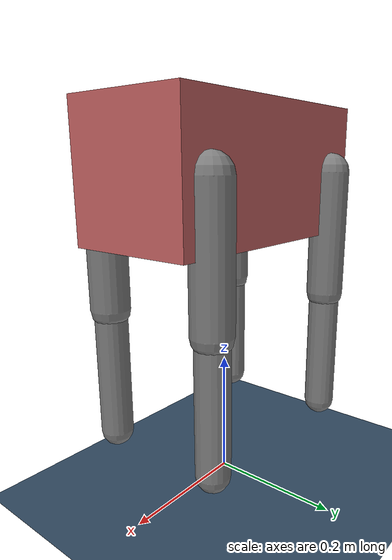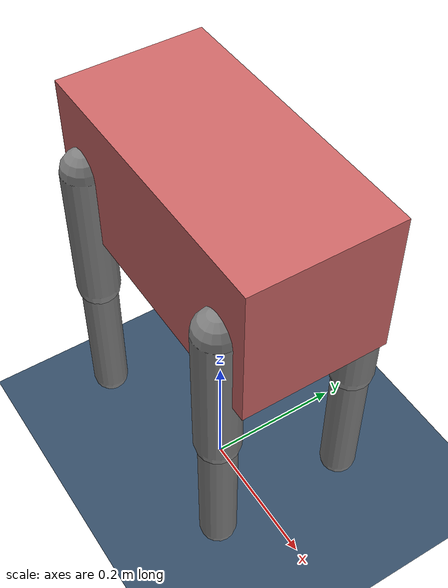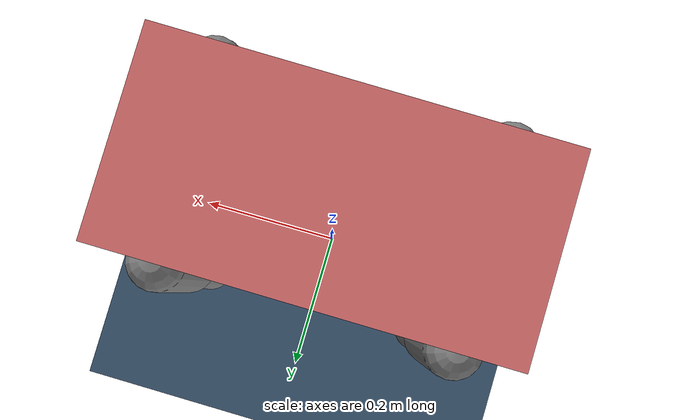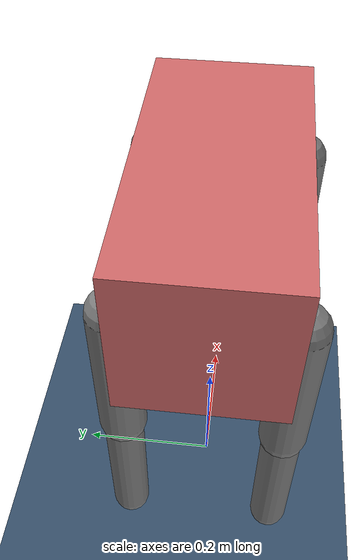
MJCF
<mujoco model="quadruped">
    <compiler angle="degree"/>

    <worldbody>
        <!-- Ground plane -->
        <geom name="ground" type="plane" size="5 5 0.1" rgba="0.2 0.3 0.4 1"/>

        <!-- Light source -->
        <light name="sun_light" pos="0 0 5" dir="0 0 -1" diffuse="1 1 1"/>

        <!-- Quadruped robot -->
        <body name="torso" pos="0 0 0.5">
            <!-- Free joint for the torso to allow movement -->
            <joint name="root" type="free"/>
            <!-- Torso geometry -->
            <geom name="torso_geom" type="box" size="0.2 0.1 0.1" rgba="0.8 0.4 0.4 1"/>

            <!-- Front Right Leg -->
            <body name="front_right_leg" pos="0.15 -0.1 0">
                <joint name="hip1" type="hinge" axis="0 1 0" range="-45 45"/>
                <geom name="thigh1_geom" type="capsule" fromto="0 0 0 0 0 -0.2" size="0.03"/>
                <body name="lower_front_right_leg" pos="0 0 -0.2">
                    <joint name="knee1" type="hinge" axis="0 1 0" range="0 90"/>
                    <geom name="shin1_geom" type="capsule" fromto="0 0 0 0 0 -0.2" size="0.025"/>
                </body>
            </body>

            <!-- Front Left Leg -->
            <body name="front_left_leg" pos="0.15 0.1 0">
                <joint name="hip2" type="hinge" axis="0 1 0" range="-45 45"/>
                <geom name="thigh2_geom" type="capsule" fromto="0 0 0 0 0 -0.2" size="0.03"/>
                <body name="lower_front_left_leg" pos="0 0 -0.2">
                    <joint name="knee2" type="hinge" axis="0 1 0" range="0 90"/>
                    <geom name="shin2_geom" type="capsule" fromto="0 0 0 0 0 -0.2" size="0.025"/>
                </body>
            </body>

            <!-- Rear Right Leg -->
            <body name="rear_right_leg" pos="-0.15 -0.1 0">
                <joint name="hip3" type="hinge" axis="0 1 0" range="-45 45"/>
                <geom name="thigh3_geom" type="capsule" fromto="0 0 0 0 0 -0.2" size="0.03"/>
                <body name="lower_rear_right_leg" pos="0 0 -0.2">
                    <joint name="knee3" type="hinge" axis="0 1 0" range="0 90"/>
                    <geom name="shin3_geom" type="capsule" fromto="0 0 0 0 0 -0.2" size="0.025"/>
                </body>
            </body>

            <!-- Rear Left Leg -->
            <body name="rear_left_leg" pos="-0.15 0.1 0">
                <joint name="hip4" type="hinge" axis="0 1 0" range="-45 45"/>
                <geom name="thigh4_geom" type="capsule" fromto="0 0 0 0 0 -0.2" size="0.03"/>
                <body name="lower_rear_left_leg" pos="0 0 -0.2">
                    <joint name="knee4" type="hinge" axis="0 1 0" range="0 90"/>
                    <geom name="shin4_geom" type="capsule" fromto="0 0 0 0 0 -0.2" size="0.025"/>
                </body>
            </body>
        </body>
    </worldbody>

    <!-- Actuators for the joints -->
    <actuator>
        <motor name="hip1_motor" joint="hip1" ctrlrange="-1 1" gear="150"/>
        <motor name="knee1_motor" joint="knee1" ctrlrange="-1 1" gear="150"/>
        <motor name="hip2_motor" joint="hip2" ctrlrange="-1 1" gear="150"/>
        <motor name="knee2_motor" joint="knee2" ctrlrange="-1 1" gear="150"/>
        <motor name="hip3_motor" joint="hip3" ctrlrange="-1 1" gear="150"/>
        <motor name="knee3_motor" joint="knee3" ctrlrange="-1 1" gear="150"/>
        <motor name="hip4_motor" joint="hip4" ctrlrange="-1 1" gear="150"/>
        <motor name="knee4_motor" joint="knee4" ctrlrange="-1 1" gear="150"/>
    </actuator>

    <!-- Keyframes defining poses -->
    <keyframe>
        <!-- Keyframe 0: Default standing pose -->
        <key name="default_pose" qpos="0 0 0.5  0 0 0 1  0 0  0 0  0 0  0 0"/>
        <!-- Keyframe 1: Legs lifted pose -->
        <key name="lifted_legs" time="1.0" qpos="0 0 0.5  0 0 0 1  0.349 -0.524  0.349 -0.524  0.349 -0.524  0.349 -0.524"/>
    </keyframe>
</mujoco>
